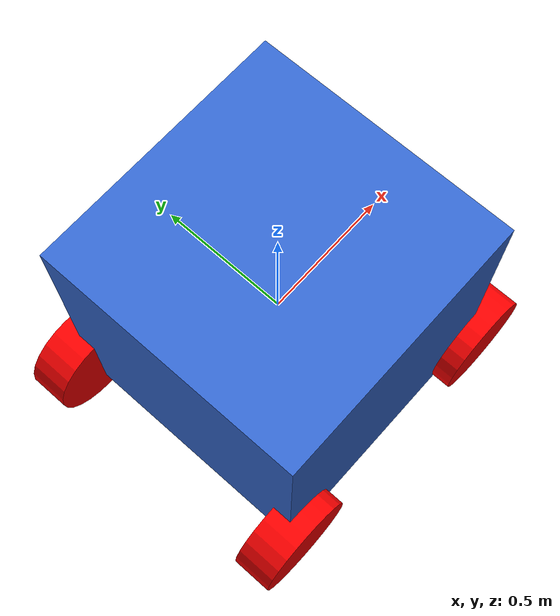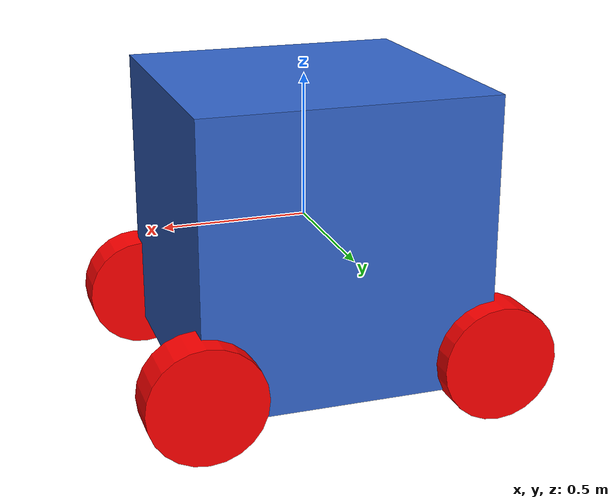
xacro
<?xml version="1.0"?>
<robot name="simple_block">

    <joint name="wheel1_to_base" type="continuous">
        <parent link="base_link"/>
        <child link="wheel1"/>
        <axis xyz="0 0 1"/>
        <origin xyz="-0.5 0.5 -0.4" rpy="1.5708 0 0"/>
    </joint>

    <joint name="wheel2_to_base" type="continuous">
        <parent link="base_link"/>
        <child link="wheel2"/>
        <axis xyz="0 0 1"/>
        <origin xyz="0.5 0.5 -0.4" rpy="1.5708 0 0"/>
    </joint>

    <joint name="wheel3_to_base" type="continuous">
        <parent link="base_link"/>
        <child link="wheel3"/>
        <axis xyz="0 0 1"/>
        <origin xyz="-0.5 -0.5 -0.4" rpy="1.5708 0 0"/>
    </joint>

    <joint name="wheel4_to_base" type="continuous">
        <parent link="base_link"/>
        <child link="wheel4"/>
        <axis xyz="0 0 1"/>
        <origin xyz="0.5 -0.5 -0.4" rpy="1.5708 0 0"/>
    </joint>

    <link name="base_link">
        <visual>
            <geometry>
                <box size="1.0 1.0 1.0"/>
            </geometry>
            <material name="blue">
                <color rgba="0.2 0.4 0.8 1.0"/>
            </material>
            <origin xyz="0 0 0" rpy="0 0 0"/>
        </visual>
        <collision>
            <geometry>
                <box size="1.0 1.0 1.0"/>
            </geometry>
            <origin xyz="0 0 0" rpy="0 0 0"/>
        </collision>
        <inertial>
            <mass value="3.5"/>
            <inertia ixx="0.583" ixy="0.0" ixz="0.0" iyy="0.583" iyz="0.0" izz="0.583"/>
        </inertial>
    </link>

    <link name="wheel1">
        <visual>
            <geometry>
                <cylinder radius="0.2" length="0.15"/>
            </geometry>
            <material name="red">
                <color rgba="1.0 0.0 0.0 1.0"/>
            </material>
            <origin xyz="0 0 0" rpy="0 0 0"/>
        </visual>
        <collision>
            <geometry>
                <cylinder radius="0.2" length="0.15"/>
            </geometry>
            <origin xyz="0 0 0" rpy="0 0 0"/>
        </collision>
        <inertial>
            <mass value="0.8"/>
            <inertia ixx="0.0095" ixy="0.0" ixz="0.0" iyy="0.0095" iyz="0.0" izz="0.016"/>
        </inertial>
    </link>
    <link name="wheel2">
        <visual>
            <geometry>
                <cylinder radius="0.2" length="0.15"/>
            </geometry>
            <material name="red">
                <color rgba="1.0 0.0 0.0 1.0"/>
            </material>
            <origin xyz="0 0 0" rpy="0 0 0"/>
        </visual>
        <collision>
            <geometry>
                <cylinder radius="0.2" length="0.15"/>
            </geometry>
            <origin xyz="0 0 0" rpy="0 0 0"/>
        </collision>
        <inertial>
            <mass value="0.8"/>
            <inertia ixx="0.0095" ixy="0.0" ixz="0.0" iyy="0.0095" iyz="0.0" izz="0.016"/>
        </inertial>
    </link>
    <link name="wheel3">
        <visual>
            <geometry>
                <cylinder radius="0.2" length="0.15"/>
            </geometry>
            <material name="red">
                <color rgba="1.0 0.0 0.0 1.0"/>
            </material>
            <origin xyz="0 0 0" rpy="0 0 0"/>
        </visual>
        <collision>
            <geometry>
                <cylinder radius="0.2" length="0.15"/>
            </geometry>
            <origin xyz="0 0 0" rpy="0 0 0"/>
        </collision>
        <inertial>
            <mass value="0.8"/>
            <inertia ixx="0.0095" ixy="0.0" ixz="0.0" iyy="0.0095" iyz="0.0" izz="0.016"/>
        </inertial>
    </link>
    <link name="wheel4">
        <visual>
            <geometry>
                <cylinder radius="0.2" length="0.15"/>
            </geometry>
            <material name="red">
                <color rgba="1.0 0.0 0.0 1.0"/>
            </material>
            <origin xyz="0 0 0" rpy="0 0 0"/>
        </visual>
        <collision>
            <geometry>
                <cylinder radius="0.2" length="0.15"/>
            </geometry>
            <origin xyz="0 0 0" rpy="0 0 0"/>
        </collision>
        <inertial>
            <mass value="0.8"/>
            <inertia ixx="0.0095" ixy="0.0" ixz="0.0" iyy="0.0095" iyz="0.0" izz="0.016"/>
        </inertial>
    </link>

    <gazebo>
        <plugin name="gazebo_ros_planar_move" filename="libgazebo_ros_planar_move.so">
            <ros>
                <!-- Overrides the default topic if you want, defaults to /cmd_vel -->
                <argument>~/cmd_vel:=cmd_vel</argument>
                <argument>~/odom:=odom</argument>
             </ros>
            <update_rate>50</update_rate>
            <publish_rate>50</publish_rate>

            <!-- Must match your robot's root link -->
            <robot_base_frame>base_link</robot_base_frame>

            <!-- Set to true if you want the plugin to handle odometry publishing -->
            <publish_odom>true</publish_odom>
            <publish_odom_tf>true</publish_odom_tf>

            <covariance_x>0.0001</covariance_x>
            <covariance_y>0.0001</covariance_y>
            <covariance_yaw>0.01</covariance_yaw>
        </plugin>
    </gazebo>

    <gazebo reference="base_link">
        <material>Gazebo/Blue</material>
    </gazebo>

    <gazebo reference="wheel1">
        <material>Gazebo/Red</material>
    </gazebo>

    <gazebo reference="wheel2">
        <material>Gazebo/Red</material>
    </gazebo>

    <gazebo reference="wheel3">
        <material>Gazebo/Red</material>
    </gazebo>

    <gazebo reference="wheel4">
        <material>Gazebo/Red</material>
    </gazebo>

</robot>
